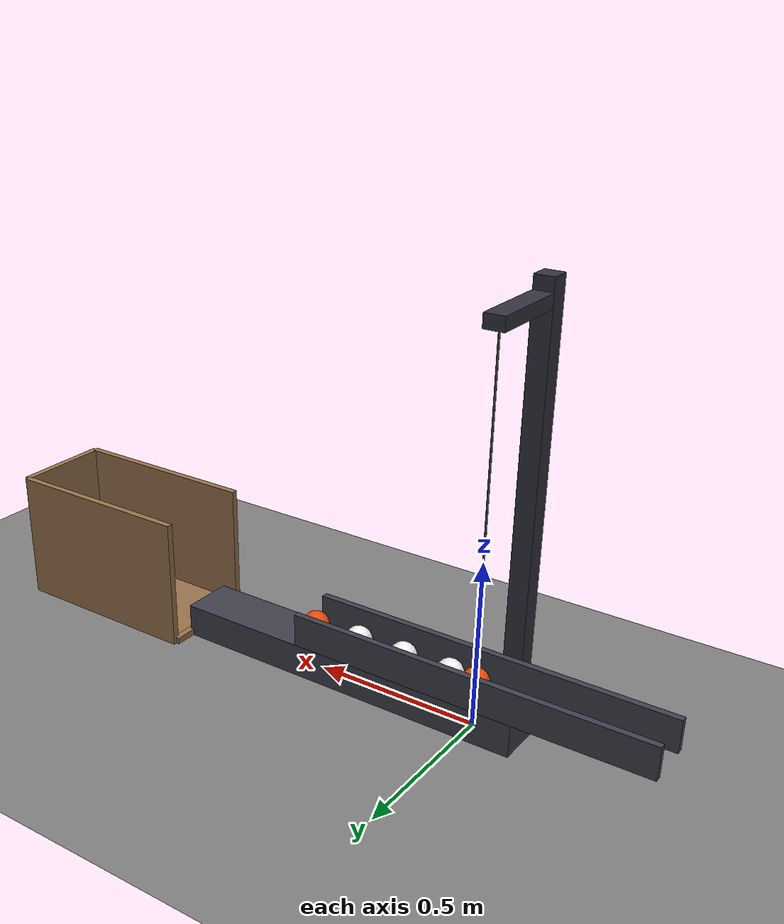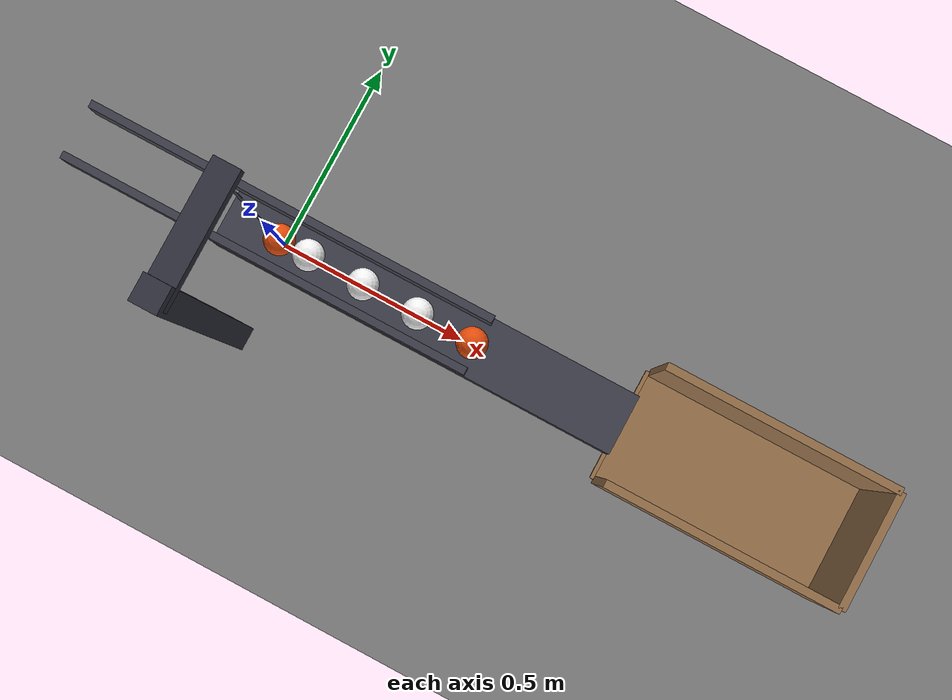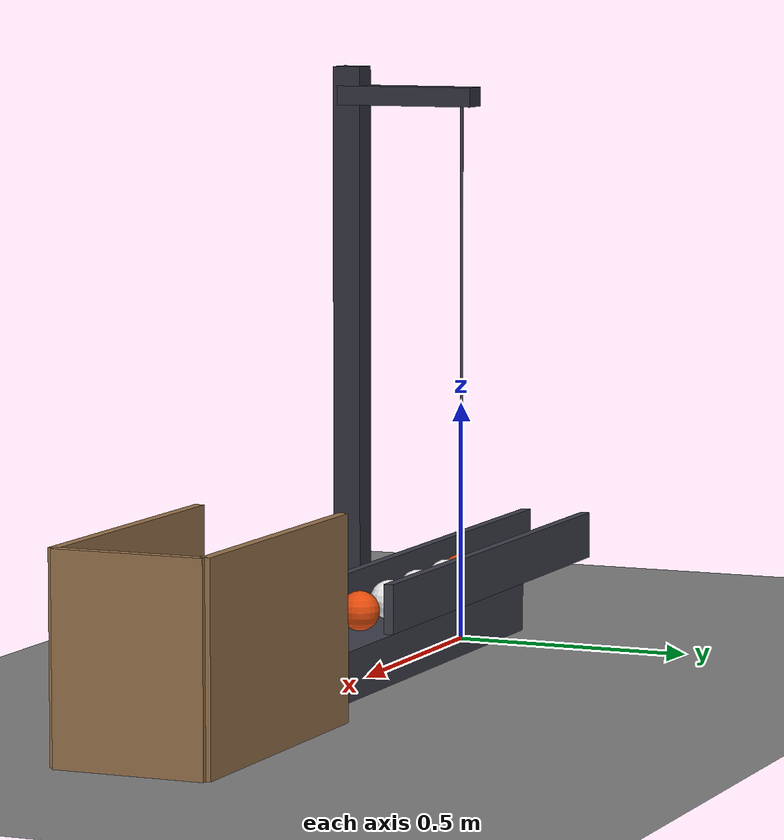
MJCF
<mujoco model="pendulum_sends_four_balls_into_a_box">
  <compiler angle="radian"/>
  <option timestep="0.002"/>
  <worldbody>
    <geom name="floor" type="plane" size="5 5 0.1" friction="0.8 0.01 0.01"/>
    <body name="rail">
      <geom name="rail" type="box" pos="0.4 0 0.05" size="0.55 0.08 0.05" friction="0.002 1e-05 1e-05" rgba="0.25 0.25 0.3 1"/>
    </body>
    <body name="left guide">
      <geom name="left guide" type="box" pos="0 0.07 0.15" size="0.55 0.01 0.05" friction="0.002 1e-05 1e-05" rgba="0.25 0.25 0.3 1"/>
    </body>
    <body name="right guide">
      <geom name="right guide" type="box" pos="0 -0.07 0.15" size="0.55 0.01 0.05" friction="0.002 1e-05 1e-05" rgba="0.25 0.25 0.3 1"/>
    </body>
    <body name="support post">
      <geom name="support post" type="box" pos="0 -0.25 0.6" size="0.03 0.03 0.6" rgba="0.2 0.2 0.25 1"/>
    </body>
    <body name="support beam">
      <geom name="support beam" type="box" pos="0 -0.12 1.14" size="0.03 0.15 0.02" rgba="0.2 0.2 0.25 1"/>
    </body>
    <body name="pendulum" pos="0 0 1.14">
      <joint name="pendulum_hinge" type="hinge" pos="0 0 0" axis="0 1 0" limited="true" range="-1.39626 1.0472" damping="0"/>
      <geom name="pendulum" type="sphere" pos="0 0 -1" size="0.04" mass="0.2" friction="0.002 1e-05 1e-05" solref="0.01 0.2" rgba="0.9 0.3 0.05 1"/>
      <geom name="pendulum rod" type="capsule" size="0.003" fromto="0 0 0 0 0 -0.96" mass="0.0001" contype="0" conaffinity="0" rgba="0.25 0.25 0.3 1"/>
    </body>
    <body name="ball1" pos="0.08 0 0.14">
      <freejoint/>
      <geom name="ball1" type="sphere" pos="0 0 0" size="0.04" mass="0.2" condim="6" friction="0.002 1e-05 1e-05" solref="0.01 0.2" rgba="0.95 0.95 0.95 1"/>
    </body>
    <body name="ball2" pos="0.23 0 0.14">
      <freejoint/>
      <geom name="ball2" type="sphere" pos="0 0 0" size="0.04" mass="0.2" condim="6" friction="0.002 1e-05 1e-05" solref="0.01 0.2" rgba="0.95 0.95 0.95 1"/>
    </body>
    <body name="ball3" pos="0.38 0 0.14">
      <freejoint/>
      <geom name="ball3" type="sphere" pos="0 0 0" size="0.04" mass="0.2" condim="6" friction="0.002 1e-05 1e-05" solref="0.01 0.2" rgba="0.95 0.95 0.95 1"/>
    </body>
    <body name="ball4" pos="0.53 0 0.14">
      <freejoint/>
      <geom name="ball4" type="sphere" pos="0 0 0" size="0.04" mass="0.2" condim="6" friction="0.002 1e-05 1e-05" solref="0.01 0.2" rgba="0.9 0.3 0.05 1"/>
    </body>
    <body name="box">
      <geom name="box_base" type="box" pos="1.25 0 0.01" size="0.3 0.15 0.01" friction="0.9 0.02 0.02" solref="0.01 1" rgba="0.6 0.45 0.3 1"/>
      <geom name="box_near_wall" type="box" pos="0.95 0 0.01" size="0.01 0.15 0.01" friction="0.9 0.02 0.02" solref="0.01 1" rgba="0.6 0.45 0.3 1"/>
      <geom name="box_far_wall" type="box" pos="1.55 0 0.2" size="0.01 0.15 0.2" friction="0.9 0.02 0.02" solref="0.01 1" rgba="0.6 0.45 0.3 1"/>
      <geom name="box_left_wall" type="box" pos="1.25 0.15 0.2" size="0.3 0.01 0.2" friction="0.9 0.02 0.02" solref="0.01 1" rgba="0.6 0.45 0.3 1"/>
      <geom name="box_right_wall" type="box" pos="1.25 -0.15 0.2" size="0.3 0.01 0.2" friction="0.9 0.02 0.02" solref="0.01 1" rgba="0.6 0.45 0.3 1"/>
    </body>
  </worldbody>
  <keyframe>
    <key name="start" qpos="1.0472 0.08 0 0.14 1 0 0 0 0.23 0 0.14 1 0 0 0 0.38 0 0.14 1 0 0 0 0.53 0 0.14 1 0 0 0" qvel="0 0 0 0 0 0 0 0 0 0 0 0 0 0 0 0 0 0 0 0 0 0 0 0 0"/>
  </keyframe>
</mujoco>
